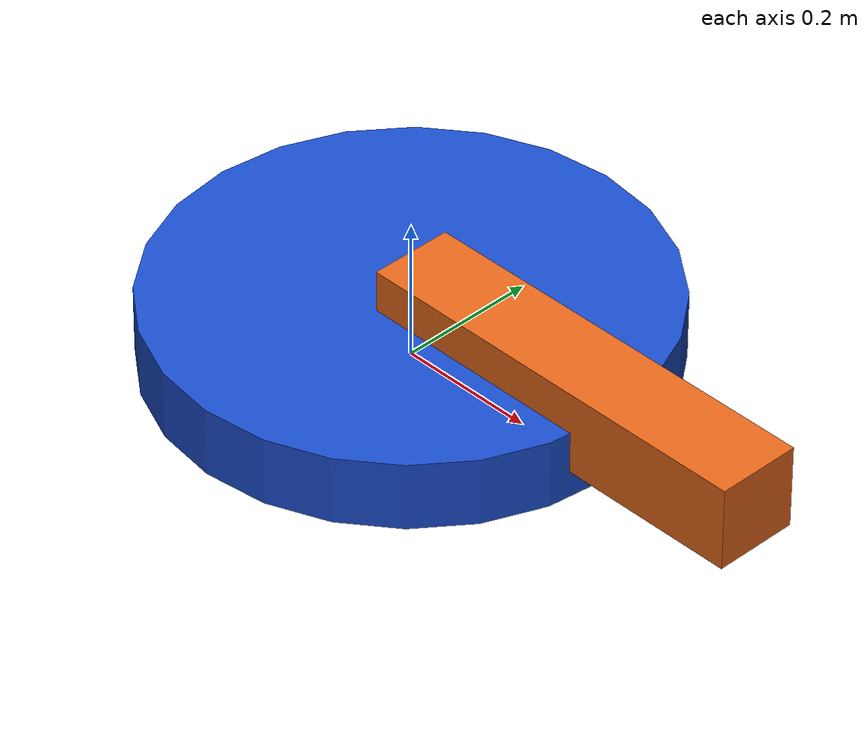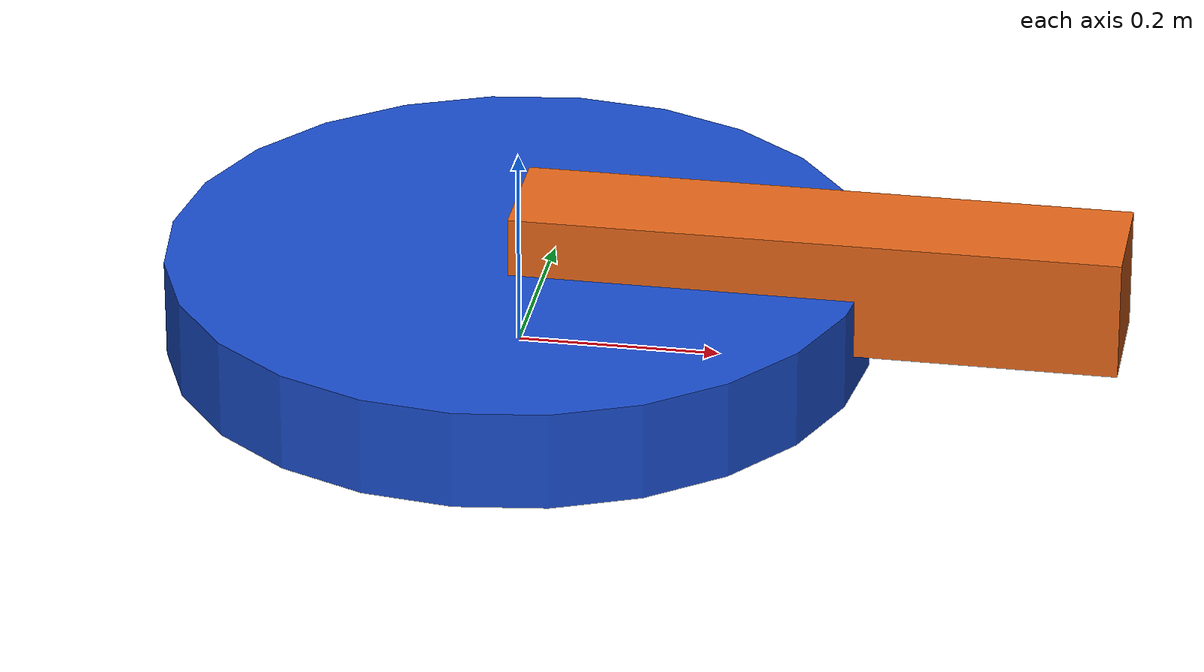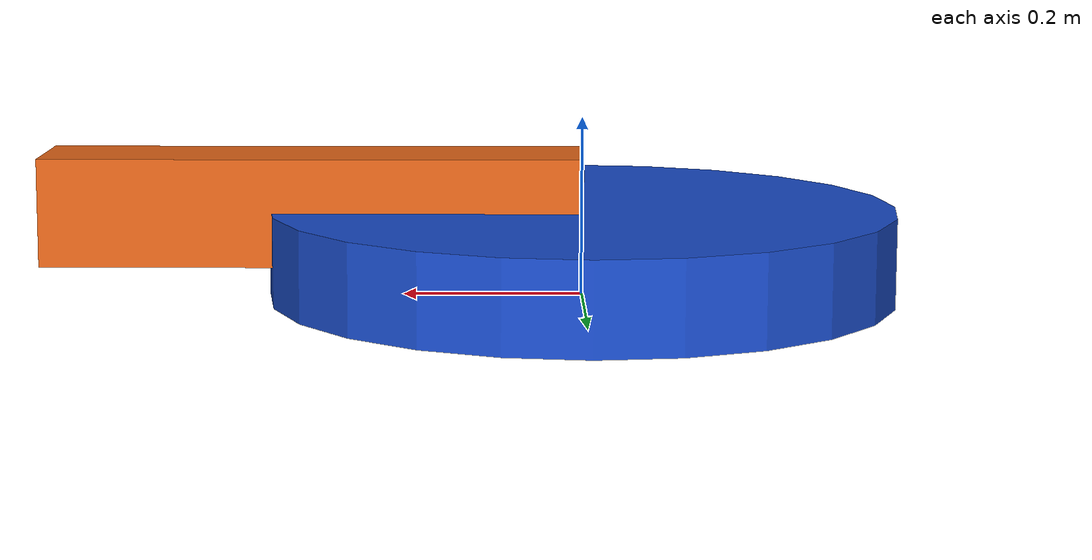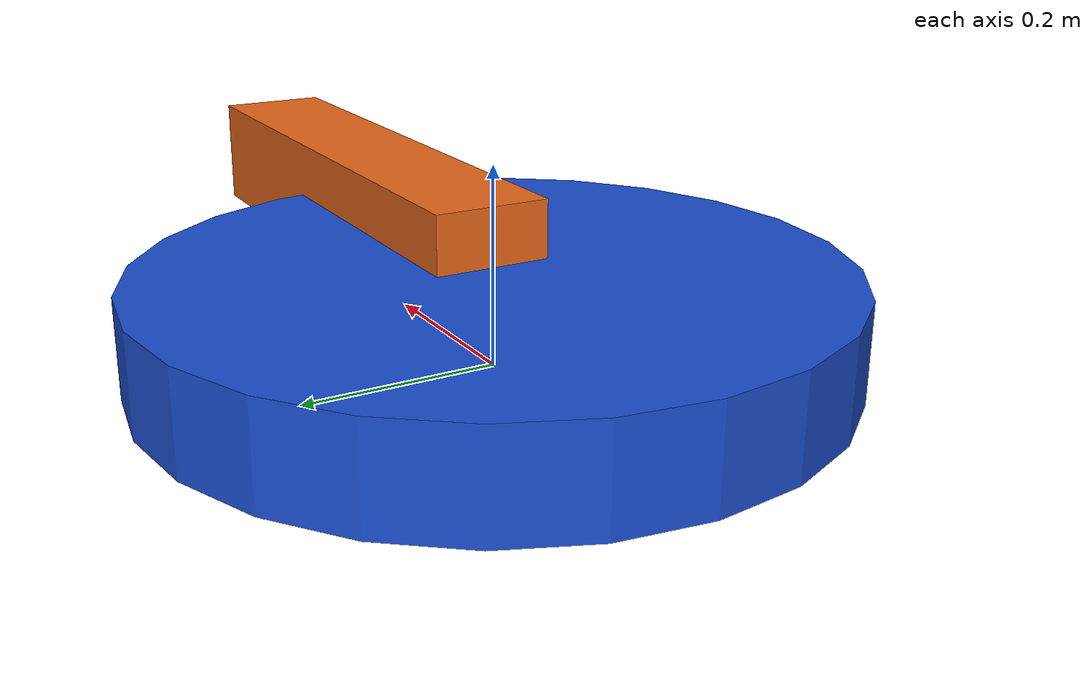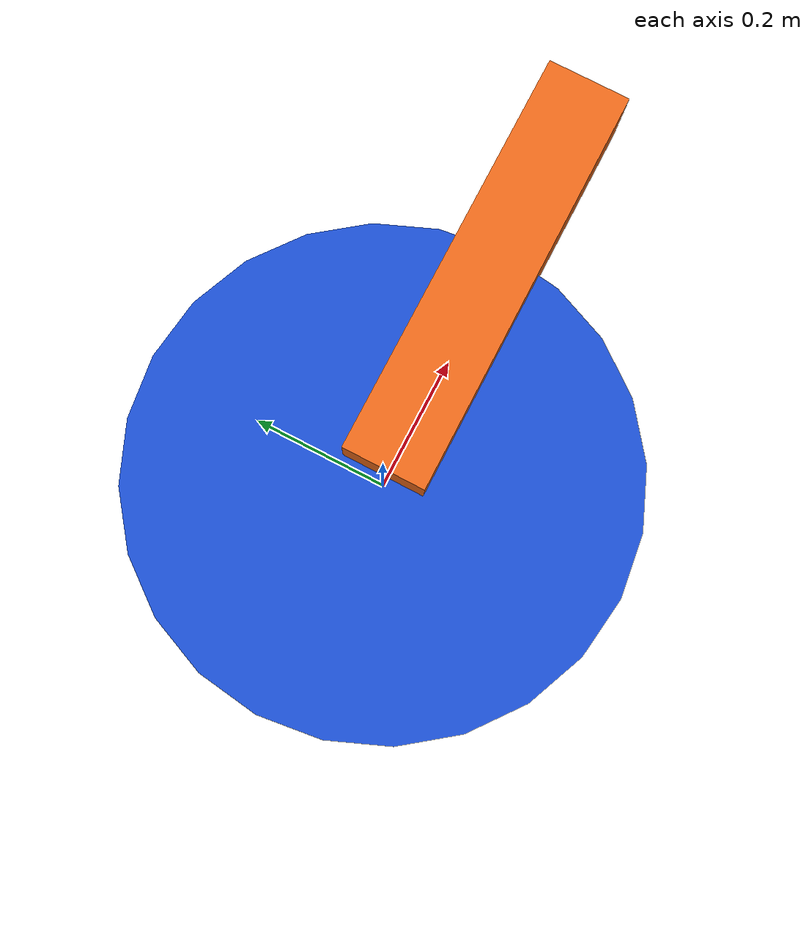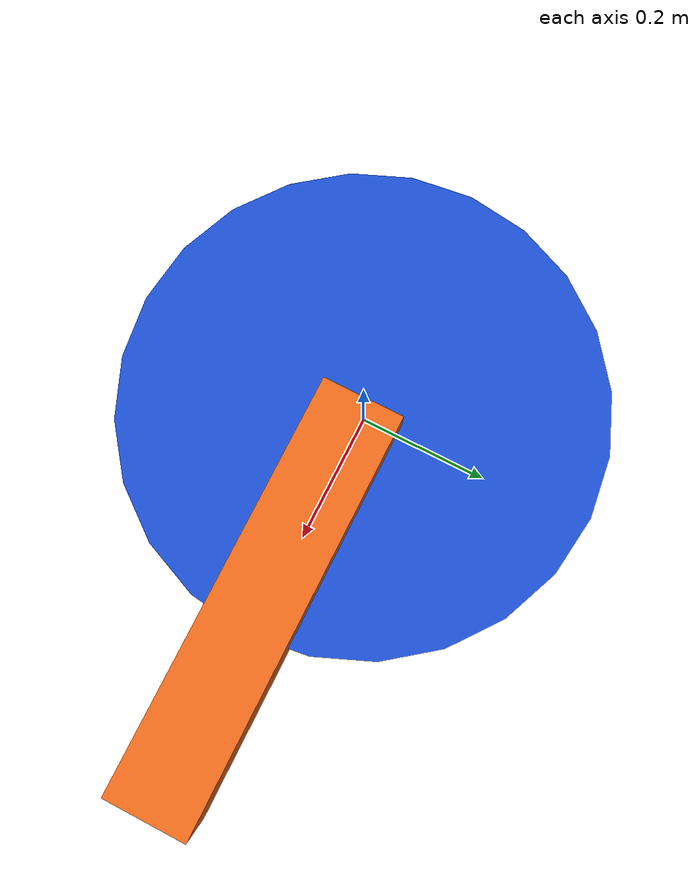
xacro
<?xml version="1.0"?>

<robot name="palm_trimmer" xmlns:xacro="http://www.ros.org/wiki/xacro">

  <material name="blue">
    <color rgba="0.1 0.3 0.8 1.0"/>
  </material>

  <material name="orange">
    <color rgba="0.9 0.4 0.1 1.0"/>
  </material>

  <!-- Main robot frame -->
  <link name="base_link">
    <visual>
      <origin xyz="0 0 0.05"/>
      <geometry>
        <cylinder radius="0.35" length="0.10"/>
      </geometry>
      <material name="blue"/>
    </visual>

    <collision>
      <origin xyz="0 0 0.05"/>
      <geometry>
        <cylinder radius="0.35" length="0.10"/>
      </geometry>
    </collision>

    <inertial>
      <origin xyz="0 0 0.05"/>
      <mass value="5.0"/>
      <inertia ixx="0.1" ixy="0.0" ixz="0.0"
               iyy="0.1" iyz="0.0"
               izz="0.1"/>
    </inertial>
  </link>

  <!-- One placeholder arm -->
  <link name="arm_link">
    <visual>
      <origin xyz="0.30 0 0"/>
      <geometry>
        <box size="0.60 0.12 0.12"/>
      </geometry>
      <material name="orange"/>
    </visual>

    <collision>
      <origin xyz="0.30 0 0"/>
      <geometry>
        <box size="0.60 0.12 0.12"/>
      </geometry>
    </collision>

    <inertial>
      <origin xyz="0.30 0 0"/>
      <mass value="1.0"/>
      <inertia ixx="0.01" ixy="0.0" ixz="0.0"
               iyy="0.01" iyz="0.0"
               izz="0.01"/>
    </inertial>
  </link>

  <!-- Sliding arm joint -->
  <joint name="arm_extension_joint" type="prismatic">
    <parent link="base_link"/>
    <child link="arm_link"/>
    <origin xyz="0 0 0.10"/>
    <axis xyz="1 0 0"/>
    <limit lower="0.0" upper="0.50" effort="100" velocity="0.20"/>
  </joint>

  <ros2_control name="GazeboSimSystem" type="system">
    <hardware>
      <plugin>gz_ros2_control/GazeboSimSystem</plugin>
    </hardware>

    <joint name="arm_extension_joint">
      <command_interface name="position">
        <param name="min">0.0</param>
        <param name="max">0.50</param>
      </command_interface>

      <state_interface name="position">
        <param name="initial_value">0.0</param>
      </state_interface>

      <state_interface name="velocity"/>
      <state_interface name="effort"/>
    </joint>
  </ros2_control>

  <gazebo>
    <plugin
      filename="gz_ros2_control-system"
      name="gz_ros2_control::GazeboSimROS2ControlPlugin">

      <parameters>
        $(find palm_trimmer_description)/config/controllers.yaml
      </parameters>

    </plugin>
  </gazebo>
</robot>
